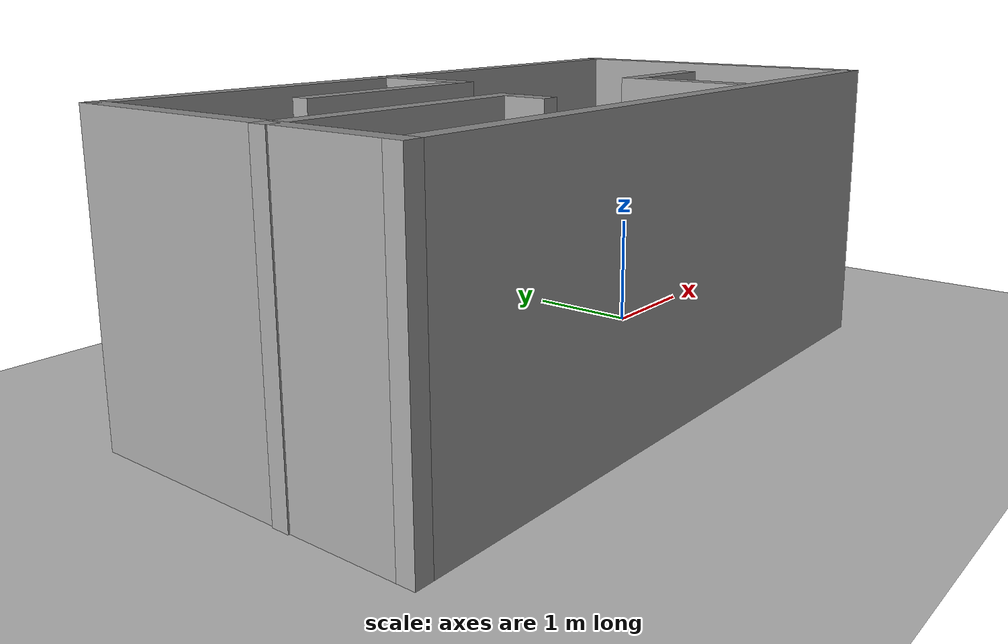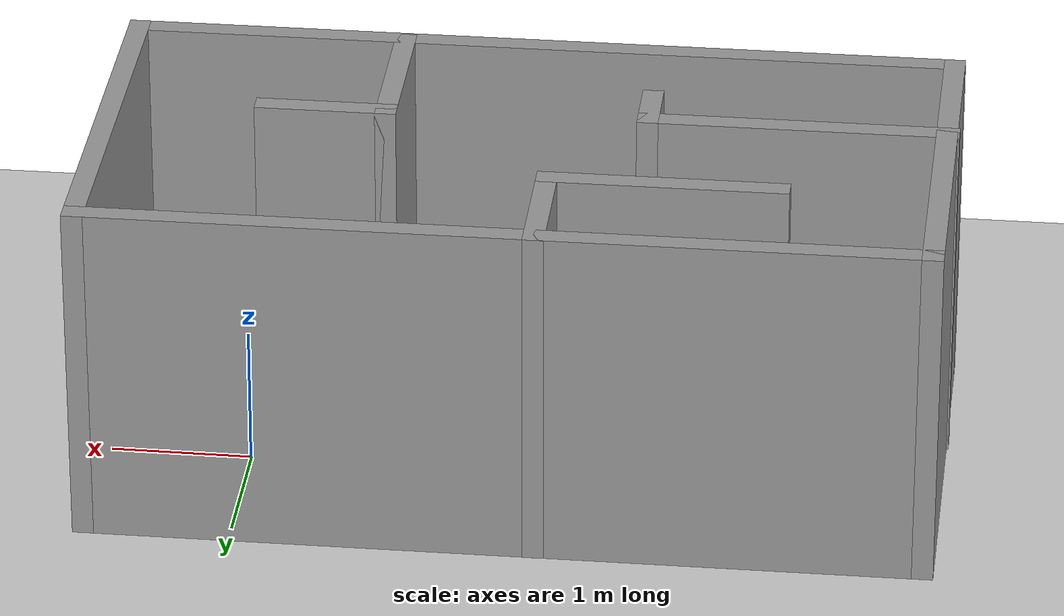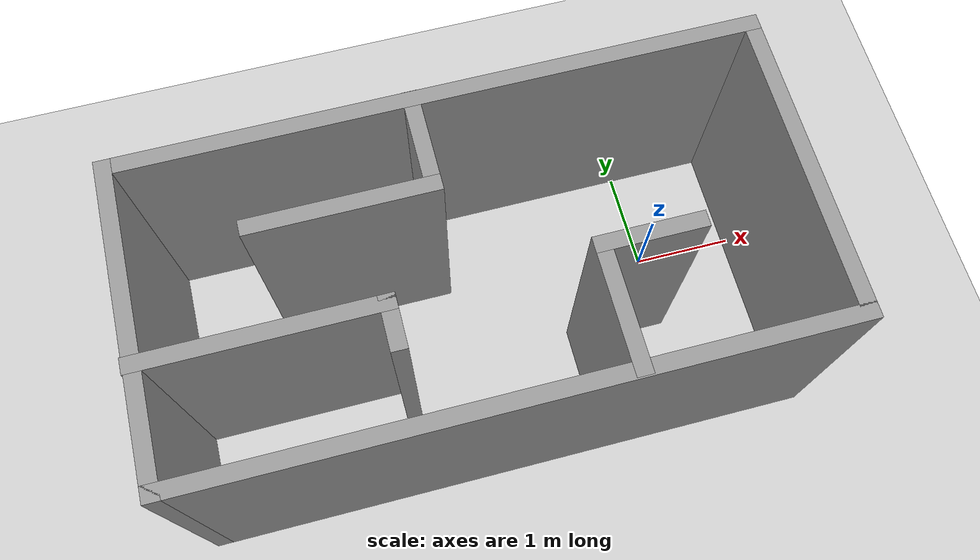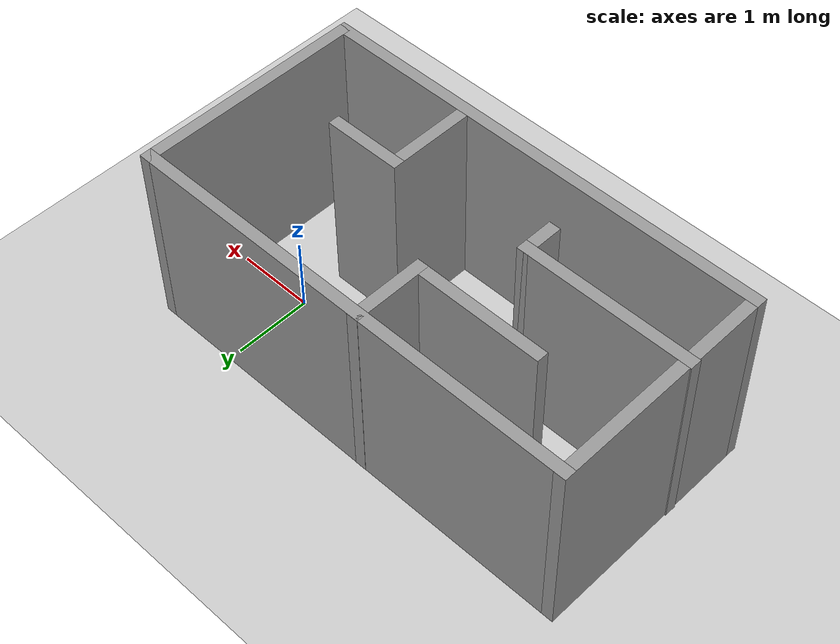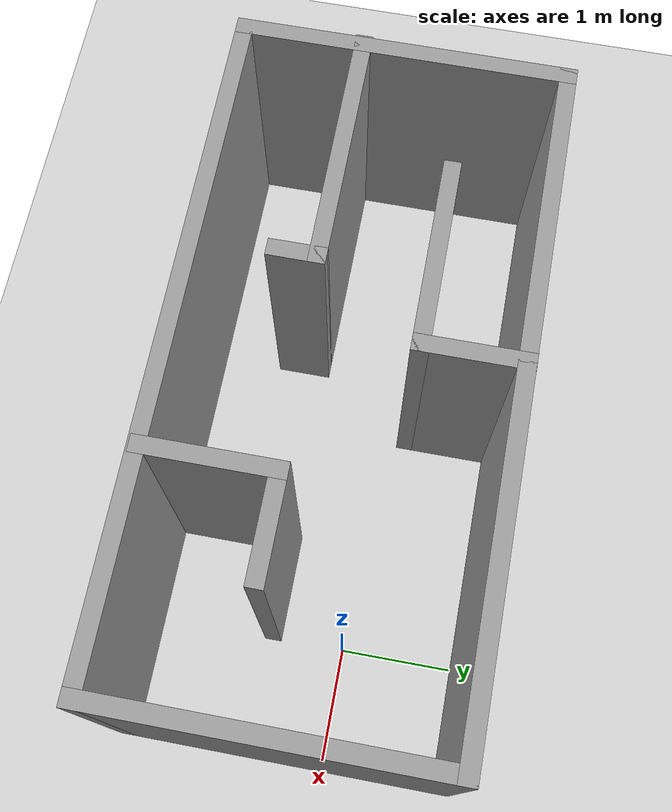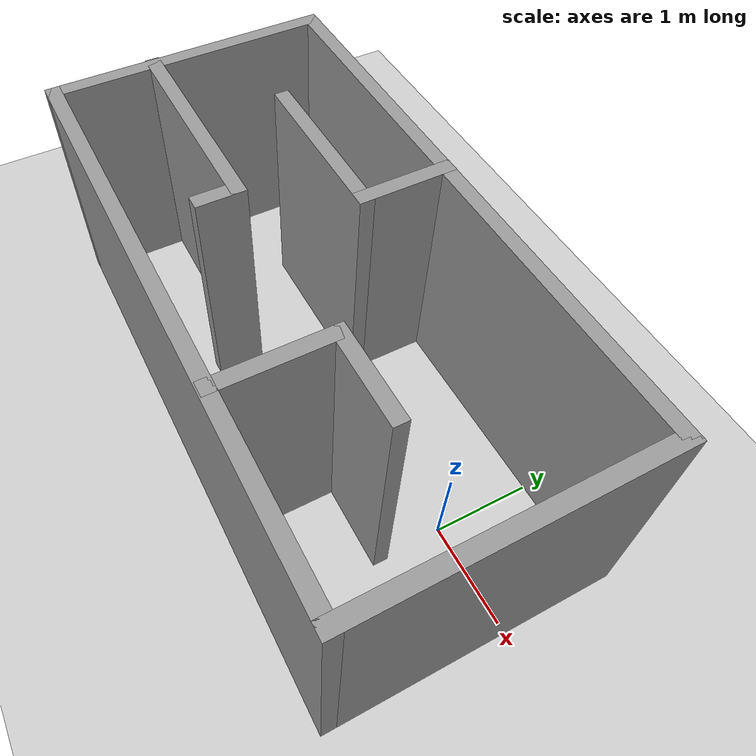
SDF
<sdf version="1.7">
 <world name="default">
  <light name="sun" type="directional">
   <pose>0 0 10 0 -0 0</pose>
   <diffuse>0.8 0.8 0.8 1</diffuse>
   <specular>0.2 0.2 0.2 1</specular>
   <attenuation>
    <range>1000</range>
    <constant>0.9</constant>
    <linear>0.01</linear>
    <quadratic>0.001</quadratic>
   </attenuation>
   <direction>-0.5 0.1 -0.9</direction>
   <spot><inner_angle>0</inner_angle><outer_angle>0</outer_angle><falloff>0</falloff></spot>
  </light>
  <model name="ground_plane">
   <static>1</static>
   <link name="link">
    <collision name="collision">
     <geometry><plane><normal>0 0 1</normal><size>100 100</size></plane></geometry>
     <surface>
      <contact><collide_bitmask>65535</collide_bitmask></contact>
      <friction><ode><mu>100</mu><mu2>50</mu2></ode></friction>
     </surface>
    </collision>
    <visual name="visual">
     <cast_shadows>0</cast_shadows>
     <geometry><plane><normal>0 0 1</normal><size>100 100</size></plane></geometry>
     <material>
      <script><uri>file://media/materials/scripts/gazebo.material</uri><name>Gazebo/Grey</name></script>
     </material>
    </visual>
   </link>
  </model>
  <gravity>0 0 -9.8</gravity>
  <magnetic_field>6e-06 2.3e-05 -4.2e-05</magnetic_field>
  <atmosphere type="adiabatic"/>
  <physics type="ode">
   <max_step_size>0.001</max_step_size>
   <real_time_factor>1</real_time_factor>
   <real_time_update_rate>1000</real_time_update_rate>
  </physics>
  <scene><ambient>0.4 0.4 0.4 1</ambient><background>0.7 0.7 0.7 1</background><shadows>1</shadows></scene>
  <audio><device>default</device></audio>
  <spherical_coordinates>
   <surface_model>EARTH_WGS84</surface_model>
   <latitude_deg>0</latitude_deg>
   <longitude_deg>0</longitude_deg>
   <elevation>0</elevation>
   <heading_deg>0</heading_deg>
  </spherical_coordinates>
  <model name="map">
   <pose>-1.9104 -0.341041 0 0 -0 0</pose>
   <link name="Wall_14">
    <collision name="Wall_14_Collision">
     <geometry><box><size>2.25 0.15 2.5</size></box></geometry>
     <pose>0 0 1.25 0 -0 0</pose>
    </collision>
    <visual name="Wall_14_Visual">
     <pose>0 0 1.25 0 -0 0</pose>
     <geometry><box><size>2.25 0.15 2.5</size></box></geometry>
     <material>
      <script><uri>file://media/materials/scripts/gazebo.material</uri><name>Gazebo/Grey</name></script>
      <ambient>1 1 1 1</ambient>
     </material>
     <meta><layer>0</layer></meta>
    </visual>
    <pose>-1.88145 -0.372236 0 0 -0 0</pose>
   </link>
   <link name="Wall_15">
    <collision name="Wall_15_Collision">
     <geometry><box><size>0.5 0.15 2.5</size></box></geometry>
     <pose>0 0 1.25 0 -0 0</pose>
    </collision>
    <visual name="Wall_15_Visual">
     <pose>0 0 1.25 0 -0 0</pose>
     <geometry><box><size>0.5 0.15 2.5</size></box></geometry>
     <material>
      <script><uri>file://media/materials/scripts/gazebo.material</uri><name>Gazebo/Grey</name></script>
      <ambient>1 1 1 1</ambient>
     </material>
     <meta><layer>0</layer></meta>
    </visual>
    <pose>-0.831448 -0.547236 0 0 -0 -1.5708</pose>
   </link>
   <link name="Wall_17">
    <collision name="Wall_17_Collision">
     <geometry><box><size>1.25 0.15 2.5</size></box></geometry>
     <pose>0 0 1.25 0 -0 0</pose>
    </collision>
    <visual name="Wall_17_Visual">
     <pose>0 0 1.25 0 -0 0</pose>
     <geometry><box><size>1.25 0.15 2.5</size></box></geometry>
     <material>
      <script><uri>file://media/materials/scripts/gazebo.material</uri><name>Gazebo/Grey</name></script>
      <ambient>1 1 1 1</ambient>
     </material>
     <meta><layer>0</layer></meta>
    </visual>
    <pose>1.00453 -0.861801 0 0 -0 1.5708</pose>
   </link>
   <link name="Wall_18">
    <collision name="Wall_18_Collision">
     <geometry><box><size>1 0.15 2.5</size></box></geometry>
     <pose>0 0 1.25 0 -0 0</pose>
    </collision>
    <visual name="Wall_18_Visual">
     <pose>0 0 1.25 0 -0 0</pose>
     <geometry><box><size>1 0.15 2.5</size></box></geometry>
     <material>
      <script><uri>file://media/materials/scripts/gazebo.material</uri><name>Gazebo/Grey</name></script>
      <ambient>1 1 1 1</ambient>
     </material>
     <meta><layer>0</layer></meta>
    </visual>
    <pose>1.42953 -0.3118 0 0 -0 0</pose>
   </link>
   <link name="Wall_3">
    <collision name="Wall_3_Collision">
     <geometry><box><size>6 0.15 2.5</size></box></geometry>
     <pose>0 0 1.25 0 -0 0</pose>
    </collision>
    <visual name="Wall_3_Visual">
     <pose>0 0 1.25 0 -0 0</pose>
     <geometry><box><size>6 0.15 2.5</size></box></geometry>
     <material>
      <script><uri>file://media/materials/scripts/gazebo.material</uri><name>Gazebo/Grey</name></script>
      <ambient>1 1 1 1</ambient>
     </material>
     <meta><layer>0</layer></meta>
    </visual>
    <pose>0.006448 1.42398 0 0 -0 0</pose>
   </link>
   <link name="Wall_4">
    <collision name="Wall_4_Collision">
     <geometry><box><size>3 0.15 2.5</size></box></geometry>
     <pose>0 0 1.25 0 -0 0</pose>
    </collision>
    <visual name="Wall_4_Visual">
     <pose>0 0 1.25 0 -0 0</pose>
     <geometry><box><size>3 0.15 2.5</size></box></geometry>
     <material>
      <script><uri>file://media/materials/scripts/gazebo.material</uri><name>Gazebo/Grey</name></script>
      <ambient>1 1 1 1</ambient>
     </material>
     <meta><layer>0</layer></meta>
    </visual>
    <pose>2.93145 -0.001016 0 0 -0 -1.5708</pose>
   </link>
   <link name="Wall_5">
    <collision name="Wall_5_Collision">
     <geometry><box><size>6 0.15 2.5</size></box></geometry>
     <pose>0 0 1.25 0 -0 0</pose>
    </collision>
    <visual name="Wall_5_Visual">
     <pose>0 0 1.25 0 -0 0</pose>
     <geometry><box><size>6 0.15 2.5</size></box></geometry>
     <material>
      <script><uri>file://media/materials/scripts/gazebo.material</uri><name>Gazebo/Grey</name></script>
      <ambient>1 1 1 1</ambient>
     </material>
     <meta><layer>0</layer></meta>
    </visual>
    <pose>0.006448 -1.42602 0 0 -0 3.14159</pose>
   </link>
   <link name="Wall_6">
    <collision name="Wall_6_Collision">
     <geometry><box><size>3 0.15 2.5</size></box></geometry>
     <pose>0 0 1.25 0 -0 0</pose>
    </collision>
    <visual name="Wall_6_Visual">
     <pose>0 0 1.25 0 -0 0</pose>
     <geometry><box><size>3 0.15 2.5</size></box></geometry>
     <material>
      <script><uri>file://media/materials/scripts/gazebo.material</uri><name>Gazebo/Grey</name></script>
      <ambient>1 1 1 1</ambient>
     </material>
     <meta><layer>0</layer></meta>
    </visual>
    <pose>-2.91855 -0.001016 0 0 -0 1.5708</pose>
   </link>
   <link name="Wall_8">
    <collision name="Wall_8_Collision">
     <geometry><box><size>1 0.15 2.5</size></box></geometry>
     <pose>0 0 1.25 0 -0 0</pose>
    </collision>
    <visual name="Wall_8_Visual">
     <pose>0 0 1.25 0 -0 0</pose>
     <geometry><box><size>1 0.15 2.5</size></box></geometry>
     <material>
      <script><uri>file://media/materials/scripts/gazebo.material</uri><name>Gazebo/Grey</name></script>
      <ambient>1 1 1 1</ambient>
     </material>
     <meta><layer>0</layer></meta>
    </visual>
    <pose>-0.220121 1.00102 0 0 -0 -1.5708</pose>
   </link>
   <link name="Wall_9">
    <collision name="Wall_9_Collision">
     <geometry><box><size>1.75 0.15 2.5</size></box></geometry>
     <pose>0 0 1.25 0 -0 0</pose>
    </collision>
    <visual name="Wall_9_Visual">
     <pose>0 0 1.25 0 -0 0</pose>
     <geometry><box><size>1.75 0.15 2.5</size></box></geometry>
     <material>
      <script><uri>file://media/materials/scripts/gazebo.material</uri><name>Gazebo/Grey</name></script>
      <ambient>1 1 1 1</ambient>
     </material>
     <meta><layer>0</layer></meta>
    </visual>
    <pose>-1.02012 0.576016 0 0 -0 3.14159</pose>
   </link>
   <static>1</static>
  </model>
 </world>
</sdf>
